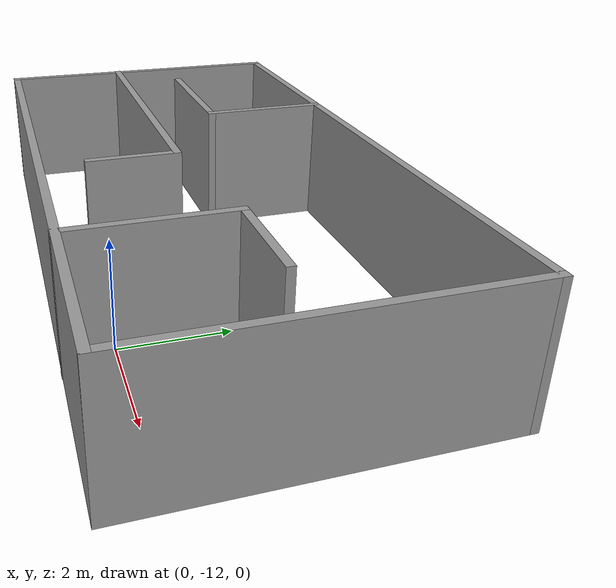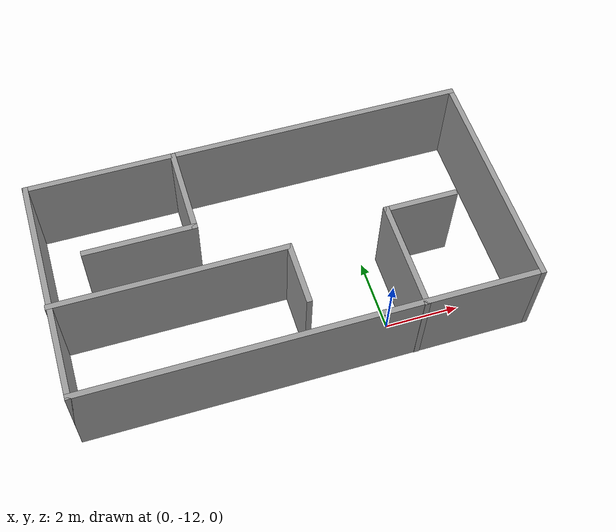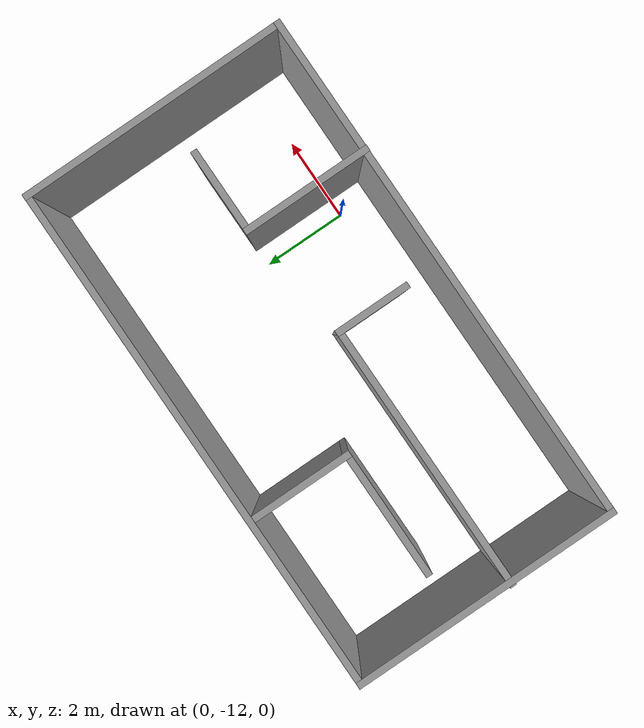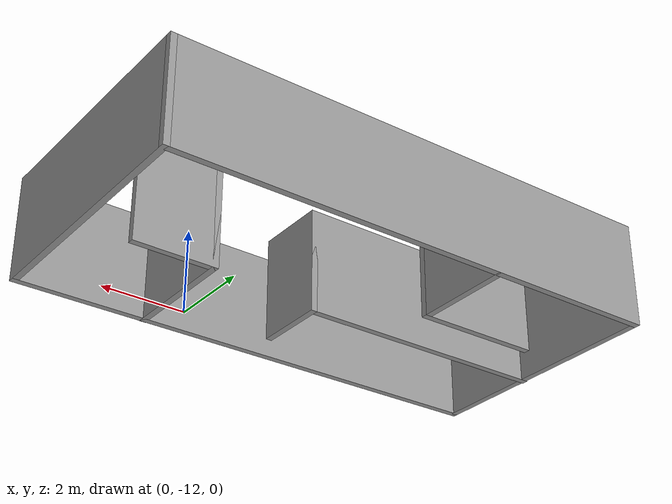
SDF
<?xml version='1.0'?>
<sdf version='1.7'>
  <model name='room'>
    <pose>-2.38 -6.4625 0 0 -0 0</pose>
    <link name='Wall_1'>
      <collision name='Wall_1_Collision'>
        <geometry>
          <box>
            <size>6.25 0.15 2.5</size>
          </box>
        </geometry>
        <pose>0 0 1.25 0 -0 0</pose>
      </collision>
      <visual name='Wall_1_Visual'>
        <pose>0 0 1.25 0 -0 0</pose>
        <geometry>
          <box>
            <size>6.25 0.15 2.5</size>
          </box>
        </geometry>
        <material>
          <script>
            <uri>file://media/materials/scripts/gazebo.material</uri>
            <name>Gazebo/Grey</name>
          </script>
          <ambient>1 1 1 1</ambient>
        </material>
        <meta>
          <layer>0</layer>
        </meta>
      </visual>
      <pose>-5.91 -3.3275 0 0 -0 -1.5708</pose>
    </link>
    <link name='Wall_10'>
      <collision name='Wall_10_Collision'>
        <geometry>
          <box>
            <size>1.75 0.15 2.5</size>
          </box>
        </geometry>
        <pose>0 0 1.25 0 -0 0</pose>
      </collision>
      <visual name='Wall_10_Visual'>
        <pose>0 0 1.25 0 -0 0</pose>
        <geometry>
          <box>
            <size>1.75 0.15 2.5</size>
          </box>
        </geometry>
        <material>
          <script>
            <uri>file://media/materials/scripts/gazebo.material</uri>
            <name>Gazebo/Grey</name>
          </script>
          <ambient>1 1 1 1</ambient>
        </material>
        <meta>
          <layer>0</layer>
        </meta>
      </visual>
      <pose>0.16 -4.7075 0 0 -0 -1.5708</pose>
    </link>
    <link name='Wall_12'>
      <collision name='Wall_12_Collision'>
        <geometry>
          <box>
            <size>3 0.15 2.5</size>
          </box>
        </geometry>
        <pose>0 0 1.25 0 -0 0</pose>
      </collision>
      <visual name='Wall_12_Visual'>
        <pose>0 0 1.25 0 -0 0</pose>
        <geometry>
          <box>
            <size>3 0.15 2.5</size>
          </box>
        </geometry>
        <material>
          <script>
            <uri>file://media/materials/scripts/gazebo.material</uri>
            <name>Gazebo/Grey</name>
          </script>
          <ambient>1 1 1 1</ambient>
        </material>
        <meta>
          <layer>0</layer>
        </meta>
      </visual>
      <pose>2.88 -4.9625 0 0 -0 1.5708</pose>
    </link>
    <link name='Wall_13'>
      <collision name='Wall_13_Collision'>
        <geometry>
          <box>
            <size>2 0.15 2.5</size>
          </box>
        </geometry>
        <pose>0 0 1.25 0 -0 0</pose>
      </collision>
      <visual name='Wall_13_Visual'>
        <pose>0 0 1.25 0 -0 0</pose>
        <geometry>
          <box>
            <size>2 0.15 2.5</size>
          </box>
        </geometry>
        <material>
          <script>
            <uri>file://media/materials/scripts/gazebo.material</uri>
            <name>Gazebo/Grey</name>
          </script>
          <ambient>1 1 1 1</ambient>
        </material>
        <meta>
          <layer>0</layer>
        </meta>
      </visual>
      <pose>3.805 -3.5375 0 0 -0 0</pose>
    </link>
    <link name='Wall_2'>
      <collision name='Wall_2_Collision'>
        <geometry>
          <box>
            <size>12 0.15 2.5</size>
          </box>
        </geometry>
        <pose>0 0 1.25 0 -0 0</pose>
      </collision>
      <visual name='Wall_2_Visual'>
        <pose>0 0 1.25 0 -0 0</pose>
        <geometry>
          <box>
            <size>12 0.15 2.5</size>
          </box>
        </geometry>
        <material>
          <script>
            <uri>file://media/materials/scripts/gazebo.material</uri>
            <name>Gazebo/Grey</name>
          </script>
          <ambient>1 1 1 1</ambient>
        </material>
        <meta>
          <layer>0</layer>
        </meta>
      </visual>
      <pose>0.015 -6.3775 0 0 -0 0</pose>
    </link>
    <link name='Wall_3'>
      <collision name='Wall_3_Collision'>
        <geometry>
          <box>
            <size>6.25 0.15 2.5</size>
          </box>
        </geometry>
        <pose>0 0 1.25 0 -0 0</pose>
      </collision>
      <visual name='Wall_3_Visual'>
        <pose>0 0 1.25 0 -0 0</pose>
        <geometry>
          <box>
            <size>6.25 0.15 2.5</size>
          </box>
        </geometry>
        <material>
          <script>
            <uri>file://media/materials/scripts/gazebo.material</uri>
            <name>Gazebo/Grey</name>
          </script>
          <ambient>1 1 1 1</ambient>
        </material>
        <meta>
          <layer>0</layer>
        </meta>
      </visual>
      <pose>5.94 -3.3275 0 0 -0 1.5708</pose>
    </link>
    <link name='Wall_4'>
      <collision name='Wall_4_Collision'>
        <geometry>
          <box>
            <size>12 0.15 2.5</size>
          </box>
        </geometry>
        <pose>0 0 1.25 0 -0 0</pose>
      </collision>
      <visual name='Wall_4_Visual'>
        <pose>0 0 1.25 0 -0 0</pose>
        <geometry>
          <box>
            <size>12 0.15 2.5</size>
          </box>
        </geometry>
        <material>
          <script>
            <uri>file://media/materials/scripts/gazebo.material</uri>
            <name>Gazebo/Grey</name>
          </script>
          <ambient>1 1 1 1</ambient>
        </material>
        <meta>
          <layer>0</layer>
        </meta>
      </visual>
      <pose>0.015 -0.2775 0 0 -0 3.14159</pose>
    </link>
    <link name='Wall_6'>
      <collision name='Wall_6_Collision'>
        <geometry>
          <box>
            <size>2.5 0.15 2.5</size>
          </box>
        </geometry>
        <pose>0 0 1.25 0 -0 0</pose>
      </collision>
      <visual name='Wall_6_Visual'>
        <pose>0 0 1.25 0 -0 0</pose>
        <geometry>
          <box>
            <size>2.5 0.15 2.5</size>
          </box>
        </geometry>
        <material>
          <script>
            <uri>file://media/materials/scripts/gazebo.material</uri>
            <name>Gazebo/Grey</name>
          </script>
          <ambient>1 1 1 1</ambient>
        </material>
        <meta>
          <layer>0</layer>
        </meta>
      </visual>
      <pose>-1.97 -1.4625 0 0 -0 -1.5708</pose>
    </link>
    <link name='Wall_7'>
      <collision name='Wall_7_Collision'>
        <geometry>
          <box>
            <size>3 0.15 2.5</size>
          </box>
        </geometry>
        <pose>0 0 1.25 0 -0 0</pose>
      </collision>
      <visual name='Wall_7_Visual'>
        <pose>0 0 1.25 0 -0 0</pose>
        <geometry>
          <box>
            <size>3 0.15 2.5</size>
          </box>
        </geometry>
        <material>
          <script>
            <uri>file://media/materials/scripts/gazebo.material</uri>
            <name>Gazebo/Grey</name>
          </script>
          <ambient>1 1 1 1</ambient>
        </material>
        <meta>
          <layer>0</layer>
        </meta>
      </visual>
      <pose>-3.395 -2.6375 0 0 -0 3.14159</pose>
    </link>
    <link name='Wall_9'>
      <collision name='Wall_9_Collision'>
        <geometry>
          <box>
            <size>6.25 0.15 2.5</size>
          </box>
        </geometry>
        <pose>0 0 1.25 0 -0 0</pose>
      </collision>
      <visual name='Wall_9_Visual'>
        <pose>0 0 1.25 0 -0 0</pose>
        <geometry>
          <box>
            <size>6.25 0.15 2.5</size>
          </box>
        </geometry>
        <material>
          <script>
            <uri>file://media/materials/scripts/gazebo.material</uri>
            <name>Gazebo/Grey</name>
          </script>
          <ambient>1 1 1 1</ambient>
        </material>
        <meta>
          <layer>0</layer>
        </meta>
      </visual>
      <pose>-2.89 -3.9075 0 0 -0 0</pose>
    </link>
    <static>1</static>
  </model>
</sdf>
